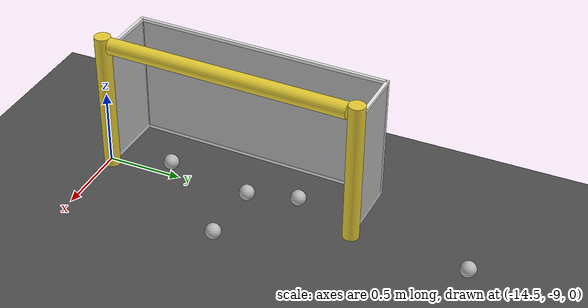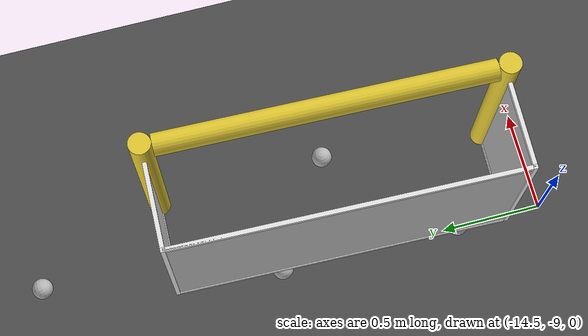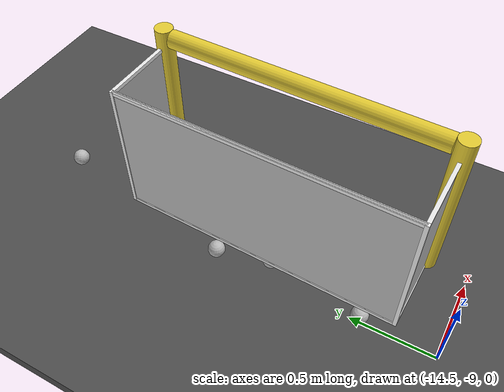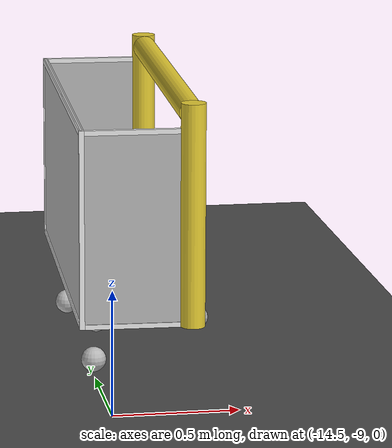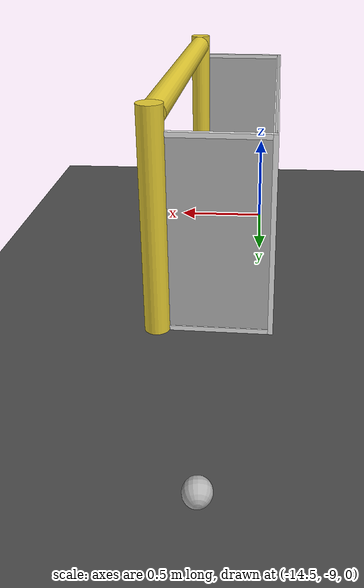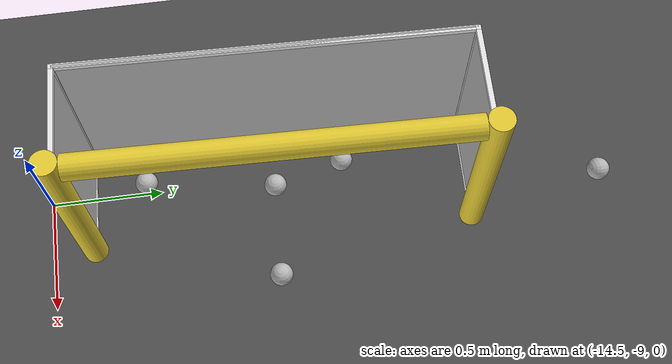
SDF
<sdf version="1.6">
 <world name="default">
  <model name="RoboCup 2014 SPL Goal">
   <static>1</static>
   <link name="left_post">
    <pose>0 0.8 0.45 0 -0 0</pose>
    <collision name="collision">
     <geometry><cylinder><radius>0.05</radius><length>0.9</length></cylinder></geometry>
    </collision>
    <visual name="visual">
     <geometry><cylinder><radius>0.05</radius><length>0.9</length></cylinder></geometry>
     <material>
      <script><uri>file://media/materials/scripts/gazebo.material</uri><name>Gazebo/ZincYellow</name></script>
     </material>
    </visual>
   </link>
   <link name="left_support_horiz_lower">
    <pose>0.24 0.8 0.01 0 -0 0</pose>
    <collision name="collision"><geometry><box><size>0.38 0.02 0.02</size></box></geometry></collision>
    <visual name="visual">
     <geometry><box><size>0.38 0.02 0.02</size></box></geometry>
     <material>
      <script><uri>file://media/materials/scripts/gazebo.material</uri><name>Gazebo/White</name></script>
     </material>
    </visual>
   </link>
   <link name="left_support_horiz_upper">
    <pose>0.24 0.8 0.79 0 -0 0</pose>
    <collision name="collision"><geometry><box><size>0.38 0.02 0.02</size></box></geometry></collision>
    <visual name="visual">
     <geometry><box><size>0.38 0.02 0.02</size></box></geometry>
     <material>
      <script><uri>file://media/materials/scripts/gazebo.material</uri><name>Gazebo/White</name></script>
     </material>
    </visual>
   </link>
   <link name="left_support_vertical">
    <pose>0.44 0.8 0.4 3.14159 1.57079 3.14159</pose>
    <collision name="collision"><geometry><box><size>0.8 0.02 0.02</size></box></geometry></collision>
    <visual name="visual">
     <geometry><box><size>0.8 0.02 0.02</size></box></geometry>
     <material>
      <script><uri>file://media/materials/scripts/gazebo.material</uri><name>Gazebo/White</name></script>
     </material>
    </visual>
   </link>
   <link name="right_support_horiz_lower">
    <pose>0.24 -0.8 0.01 0 -0 0</pose>
    <collision name="collision"><geometry><box><size>0.38 0.02 0.02</size></box></geometry></collision>
    <visual name="visual">
     <geometry><box><size>0.38 0.02 0.02</size></box></geometry>
     <material>
      <script><uri>file://media/materials/scripts/gazebo.material</uri><name>Gazebo/White</name></script>
     </material>
    </visual>
   </link>
   <link name="right_support_horiz_upper">
    <pose>0.24 -0.8 0.79 0 -0 0</pose>
    <collision name="collision"><geometry><box><size>0.38 0.02 0.02</size></box></geometry></collision>
    <visual name="visual">
     <geometry><box><size>0.38 0.02 0.02</size></box></geometry>
     <material>
      <script><uri>file://media/materials/scripts/gazebo.material</uri><name>Gazebo/White</name></script>
     </material>
    </visual>
   </link>
   <link name="right_support_vertical">
    <pose>0.44 -0.8 0.4 3.14159 1.57079 3.14159</pose>
    <collision name="collision"><geometry><box><size>0.8 0.02 0.02</size></box></geometry></collision>
    <visual name="visual">
     <geometry><box><size>0.8 0.02 0.02</size></box></geometry>
     <material>
      <script><uri>file://media/materials/scripts/gazebo.material</uri><name>Gazebo/White</name></script>
     </material>
    </visual>
   </link>
   <link name="center_support_horiz_lower">
    <pose>0.44 0 0.01 3.14159 1.57079 3.14159</pose>
    <collision name="collision"><geometry><box><size>0.02 1.58 0.02</size></box></geometry></collision>
    <visual name="visual">
     <geometry><box><size>0.02 1.58 0.02</size></box></geometry>
     <material>
      <script><uri>file://media/materials/scripts/gazebo.material</uri><name>Gazebo/White</name></script>
     </material>
    </visual>
   </link>
   <link name="center_support_horiz_upper">
    <pose>0.44 0 0.79 3.14159 1.57079 3.14159</pose>
    <collision name="collision"><geometry><box><size>0.02 1.58 0.02</size></box></geometry></collision>
    <visual name="visual">
     <geometry><box><size>0.02 1.58 0.02</size></box></geometry>
     <material>
      <script><uri>file://media/materials/scripts/gazebo.material</uri><name>Gazebo/White</name></script>
     </material>
    </visual>
   </link>
   <link name="right_post">
    <pose>0 -0.8 0.45 0 -0 0</pose>
    <collision name="collision">
     <geometry><cylinder><radius>0.05</radius><length>0.9</length></cylinder></geometry>
    </collision>
    <visual name="visual">
     <geometry><cylinder><radius>0.05</radius><length>0.9</length></cylinder></geometry>
     <material>
      <script><uri>file://media/materials/scripts/gazebo.material</uri><name>Gazebo/ZincYellow</name></script>
     </material>
    </visual>
   </link>
   <link name="crossbar">
    <pose>0 0 0.85 1.57 1.57 0</pose>
    <collision name="collision">
     <geometry><cylinder><radius>0.05</radius><length>1.5</length></cylinder></geometry>
    </collision>
    <visual name="visual">
     <geometry><cylinder><radius>0.05</radius><length>1.5</length></cylinder></geometry>
     <material>
      <script><uri>file://media/materials/scripts/gazebo.material</uri><name>Gazebo/ZincYellow</name></script>
     </material>
    </visual>
   </link>
   <link name="center_net">
    <pose>0.44 0 0.4 0 -0 0</pose>
    <collision name="collision"><geometry><box><size>0.01 1.6 0.8</size></box></geometry></collision>
    <visual name="visual">
     <geometry><box><size>0.01 1.6 0.8</size></box></geometry>
     <material>
      <script>
       <uri>model://robocup09_spl_field/materials/scripts/</uri>
       <uri>model://robocup09_spl_field/materials/textures/</uri>
       <name>RoboCup/Net</name>
      </script>
     </material>
    </visual>
   </link>
   <link name="left_net">
    <pose>0.24 0.8 0.4 0 -0 0</pose>
    <collision name="collision"><geometry><box><size>0.38 0.01 0.76</size></box></geometry></collision>
    <visual name="visual">
     <geometry><box><size>0.38 0.01 0.76</size></box></geometry>
     <material>
      <script>
       <uri>model://robocup09_spl_field/materials/scripts/</uri>
       <uri>model://robocup09_spl_field/materials/textures/</uri>
       <name>RoboCup/Net</name>
      </script>
     </material>
    </visual>
   </link>
   <link name="right_net">
    <pose>0.24 -0.8 0.4 0 -0 0</pose>
    <collision name="collision"><geometry><box><size>0.38 0.01 0.76</size></box></geometry></collision>
    <visual name="visual">
     <geometry><box><size>0.38 0.01 0.76</size></box></geometry>
     <material>
      <script>
       <uri>model://robocup09_spl_field/materials/scripts/</uri>
       <uri>model://robocup09_spl_field/materials/textures/</uri>
       <name>RoboCup/Net</name>
      </script>
     </material>
    </visual>
   </link>
   <pose>-14.122 -7.96229 0.280294 0 -0 3.1127</pose>
  </model>
  <model name="frc2016_ball_clone_8_clone_0">
   <pose>-14.3093 -6.50961 0.10057 1.05517 -0.940867 0.537688</pose>
   <link name="link">
    <inertial>
     <mass>0.213</mass>
     <inertia>
      <ixx>0.00322667</ixx>
      <ixy>0</ixy>
      <ixz>0</ixz>
      <iyy>0.00322667</iyy>
      <iyz>0</iyz>
      <izz>0.00322667</izz>
     </inertia>
    </inertial>
    <visual name="visual"><geometry><sphere><radius>0.0506132</radius></sphere></geometry></visual>
    <collision name="collision">
     <geometry><sphere><radius>0.0506132</radius></sphere></geometry>
     <surface>
      <bounce><restitution_coefficient>0.15937</restitution_coefficient><threshold>0</threshold></bounce>
      <contact><ode><max_vel>100</max_vel><min_depth>0.001</min_depth></ode></contact>
     </surface>
    </collision>
   </link>
  </model>
  <model name="frc2016_ball_clone_8_clone_4">
   <pose>-14.5112 -7.66663 0.0998 -2.3e-05 3.1e-05 -0</pose>
   <link name="link">
    <inertial>
     <mass>0.213</mass>
     <inertia>
      <ixx>0.00322667</ixx>
      <ixy>0</ixy>
      <ixz>0</ixz>
      <iyy>0.00322667</iyy>
      <iyz>0</iyz>
      <izz>0.00322667</izz>
     </inertia>
    </inertial>
    <visual name="visual"><geometry><sphere><radius>0.0506132</radius></sphere></geometry></visual>
    <collision name="collision">
     <geometry><sphere><radius>0.0506132</radius></sphere></geometry>
     <surface>
      <bounce><restitution_coefficient>0.15937</restitution_coefficient><threshold>0</threshold></bounce>
      <contact><ode><max_vel>100</max_vel><min_depth>0.001</min_depth></ode></contact>
     </surface>
    </collision>
   </link>
  </model>
  <model name="frc2016_ball_clone_8_clone_10">
   <pose>-14.4262 -7.97896 0.0998 -2.4e-05 3.1e-05 0</pose>
   <link name="link">
    <inertial>
     <mass>0.213</mass>
     <inertia>
      <ixx>0.00322667</ixx>
      <ixy>0</ixy>
      <ixz>0</ixz>
      <iyy>0.00322667</iyy>
      <iyz>0</iyz>
      <izz>0.00322667</izz>
     </inertia>
    </inertial>
    <visual name="visual"><geometry><sphere><radius>0.0506132</radius></sphere></geometry></visual>
    <collision name="collision">
     <geometry><sphere><radius>0.0506132</radius></sphere></geometry>
     <surface>
      <bounce><restitution_coefficient>0.15937</restitution_coefficient><threshold>0</threshold></bounce>
      <contact><ode><max_vel>100</max_vel><min_depth>0.001</min_depth></ode></contact>
     </surface>
    </collision>
   </link>
  </model>
  <model name="frc2016_ball_clone_8_clone_14">
   <pose>-14.5139 -8.55729 0.0998 0 -0 0</pose>
   <link name="link">
    <inertial>
     <mass>0.213</mass>
     <inertia>
      <ixx>0.00322667</ixx>
      <ixy>0</ixy>
      <ixz>0</ixz>
      <iyy>0.00322667</iyy>
      <iyz>0</iyz>
      <izz>0.00322667</izz>
     </inertia>
    </inertial>
    <visual name="visual"><geometry><sphere><radius>0.0506132</radius></sphere></geometry></visual>
    <collision name="collision">
     <geometry><sphere><radius>0.0506132</radius></sphere></geometry>
     <surface>
      <bounce><restitution_coefficient>0.15937</restitution_coefficient><threshold>0</threshold></bounce>
      <contact><ode><max_vel>100</max_vel><min_depth>0.001</min_depth></ode></contact>
     </surface>
    </collision>
   </link>
  </model>
  <model name="frc2016_ball_clone_8_clone_15">
   <pose>-14 -8 0.0998 -2.7e-05 3.1e-05 0</pose>
   <link name="link">
    <inertial>
     <mass>0.213</mass>
     <inertia>
      <ixx>0.00322667</ixx>
      <ixy>0</ixy>
      <ixz>0</ixz>
      <iyy>0.00322667</iyy>
      <iyz>0</iyz>
      <izz>0.00322667</izz>
     </inertia>
    </inertial>
    <visual name="visual"><geometry><sphere><radius>0.0506132</radius></sphere></geometry></visual>
    <collision name="collision">
     <geometry><sphere><radius>0.0506132</radius></sphere></geometry>
     <surface>
      <bounce><restitution_coefficient>0.15937</restitution_coefficient><threshold>0</threshold></bounce>
      <contact><ode><max_vel>100</max_vel><min_depth>0.001</min_depth></ode></contact>
     </surface>
    </collision>
   </link>
  </model>
  <model name="asphalt_plane">
   <static>1</static>
   <link name="link">
    <collision name="collision"><geometry><box><size>1231.34 219.833 0.1</size></box></geometry></collision>
    <visual name="visual">
     <cast_shadows>0</cast_shadows>
     <geometry><box><size>1231.34 219.833 0.1</size></box></geometry>
     <material>
      <script>
       <uri>model://asphalt_plane/materials/scripts</uri>
       <uri>model://asphalt_plane/materials/textures</uri>
       <name>vrc/asphalt</name>
      </script>
     </material>
    </visual>
   </link>
   <pose>-29.4694 28.4475 -0.062447 0 -0 0</pose>
  </model>
 </world>
</sdf>
